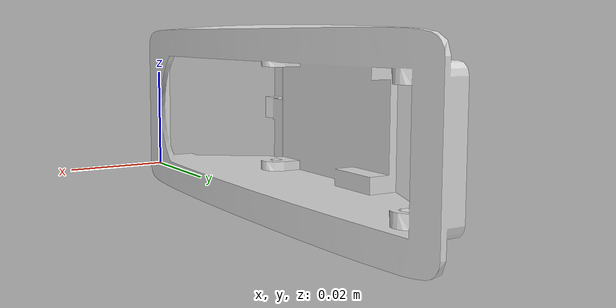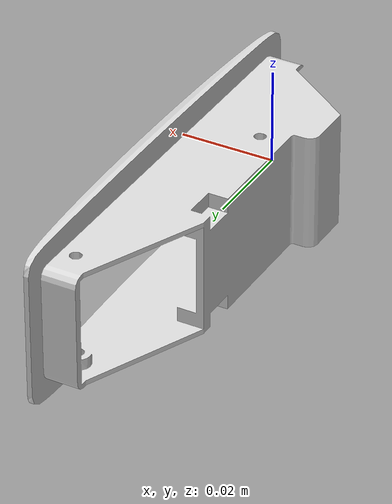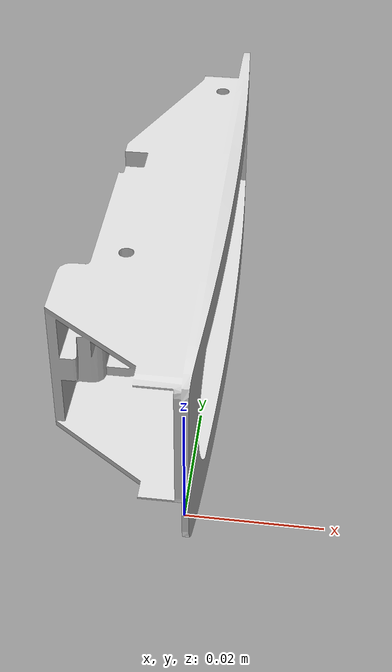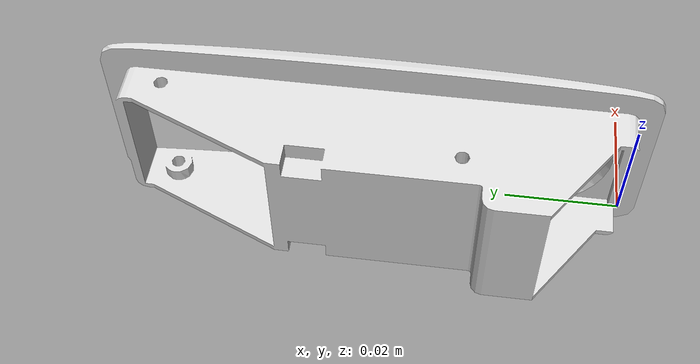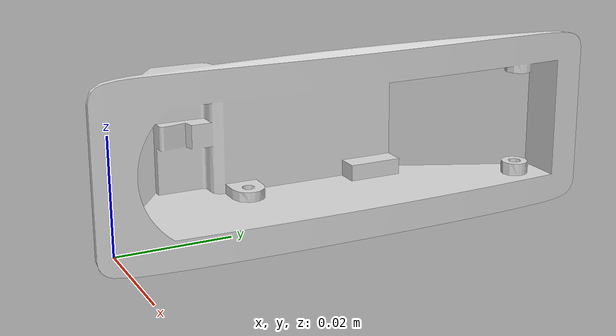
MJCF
<mujoco model="push_latch_housing">
  <default>
    <default class="visual">
      <geom group="2" type="mesh" contype="0" conaffinity="0"/>
    </default>
    <default class="collision">
      <geom group="3" type="mesh"/>
    </default>
  </default>
  <asset>
    <material name="mtl_push_latch_housing" specular="0.20000000000000004" shininess="1.0" rgba="0.85098039 0.85098039 0.85098039 1.0"/>
    <mesh file="push_latch_housing.obj"/>
  </asset>
  <worldbody>
    <body name="push_latch_housing">
      <geom material="mtl_push_latch_housing" mesh="push_latch_housing" class="visual"/>
      <geom mesh="push_latch_housing" class="collision"/>
    </body>
  </worldbody>
</mujoco>
